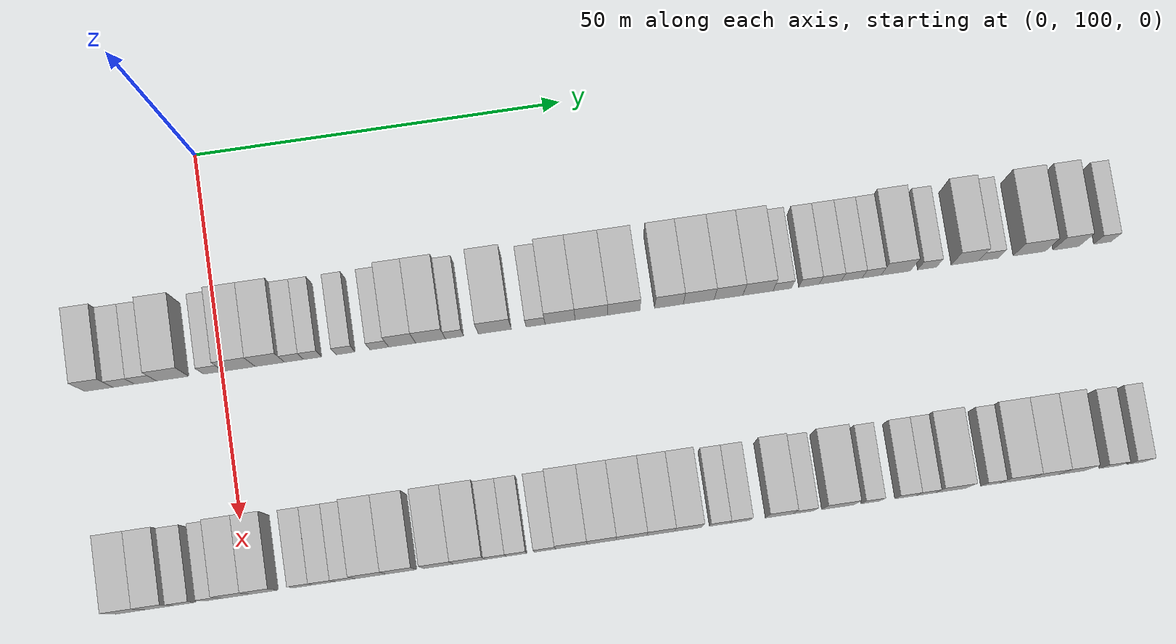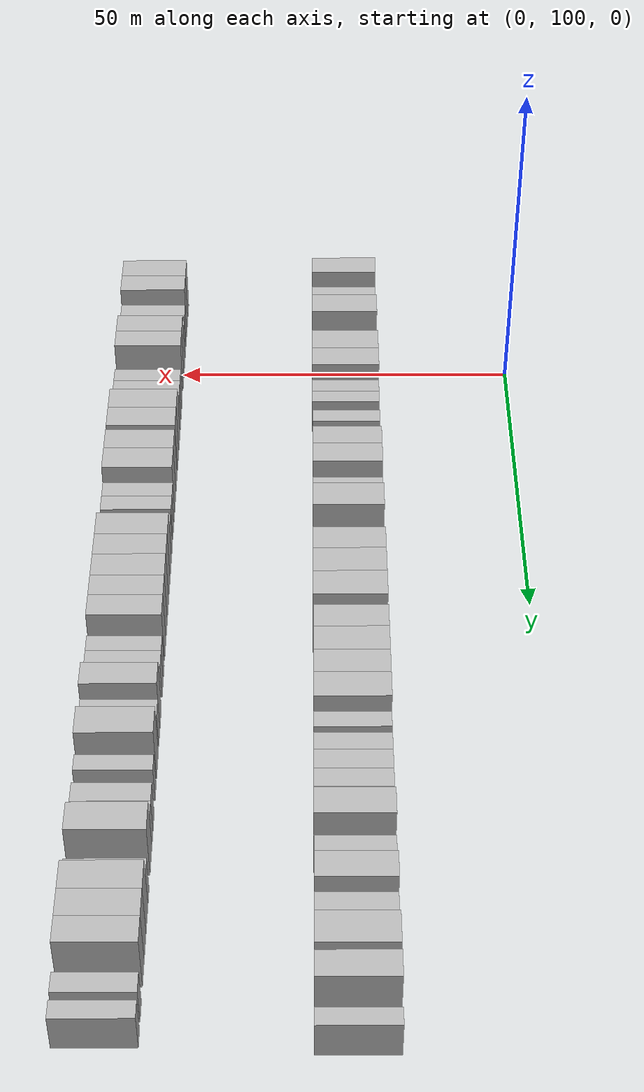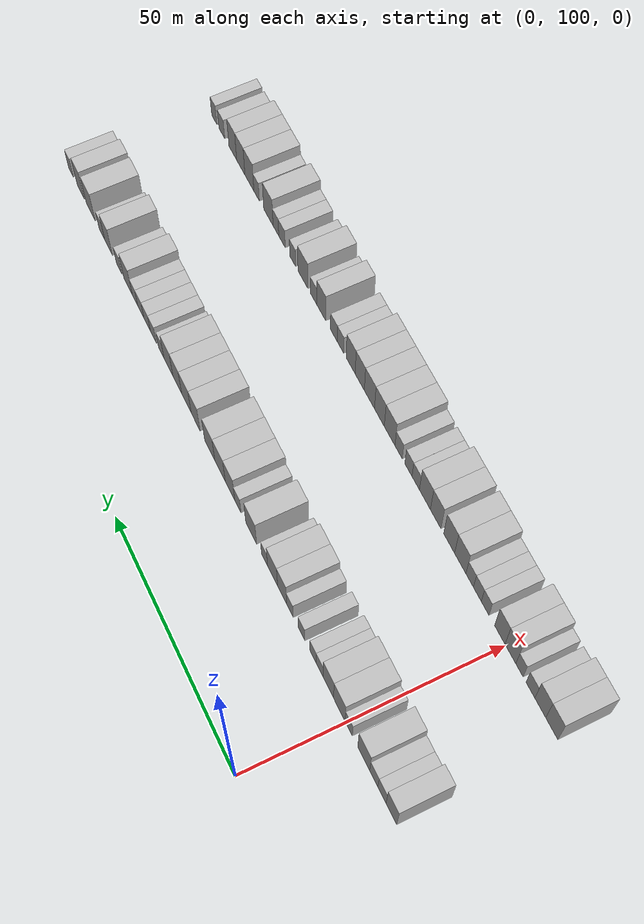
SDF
<sdf version="1.6">
 <world name="default">
  <model name="building_72">
   <static>1</static>
   <pose>25.0000 83.4404 0 0.000000 0.000000 0.000000</pose>
   <link name="link">
    <pose>0 0 4.50 0 0 0</pose>
    <collision name="collision"><geometry><box><size>10.0000 3.7390 9.0000</size></box></geometry></collision>
    <visual name="visual">
     <cast_shadows>0</cast_shadows>
     <geometry><box><size>10.0000 3.7390 9.0000</size></box></geometry>
     <material>
      <script>
       <uri>model://HANNAS_wall/materials/scripts</uri>
       <uri>model://HANNAS_wall/materials/textures</uri>
       <name>vrc/HANNAS_wall</name>
      </script>
     </material>
    </visual>
   </link>
  </model>
  <model name="building_73">
   <static>1</static>
   <pose>25.0000 86.7811 0 0.000000 0.000000 0.000000</pose>
   <link name="link">
    <pose>0 0 3.00 0 0 0</pose>
    <collision name="collision"><geometry><box><size>10.0000 2.9424 6.0000</size></box></geometry></collision>
    <visual name="visual">
     <cast_shadows>0</cast_shadows>
     <geometry><box><size>10.0000 2.9424 6.0000</size></box></geometry>
     <material>
      <script>
       <uri>model://HANNAS_wall/materials/scripts</uri>
       <uri>model://HANNAS_wall/materials/textures</uri>
       <name>vrc/HANNAS_wall</name>
      </script>
     </material>
    </visual>
   </link>
  </model>
  <model name="building_74">
   <static>1</static>
   <pose>25.0000 89.7200 0 0.000000 0.000000 0.000000</pose>
   <link name="link">
    <pose>0 0 3.00 0 0 0</pose>
    <collision name="collision"><geometry><box><size>10.0000 2.9354 6.0000</size></box></geometry></collision>
    <visual name="visual">
     <cast_shadows>0</cast_shadows>
     <geometry><box><size>10.0000 2.9354 6.0000</size></box></geometry>
     <material>
      <script>
       <uri>model://HANNAS_wall/materials/scripts</uri>
       <uri>model://HANNAS_wall/materials/textures</uri>
       <name>vrc/HANNAS_wall</name>
      </script>
     </material>
    </visual>
   </link>
  </model>
  <model name="building_75">
   <static>1</static>
   <pose>25.0000 93.3581 0 0.000000 0.000000 0.000000</pose>
   <link name="link">
    <pose>0 0 4.50 0 0 0</pose>
    <collision name="collision"><geometry><box><size>10.0000 4.3407 9.0000</size></box></geometry></collision>
    <visual name="visual">
     <cast_shadows>0</cast_shadows>
     <geometry><box><size>10.0000 4.3407 9.0000</size></box></geometry>
     <material>
      <script>
       <uri>model://HANNAS_wall/materials/scripts</uri>
       <uri>model://HANNAS_wall/materials/textures</uri>
       <name>vrc/HANNAS_wall</name>
      </script>
     </material>
    </visual>
   </link>
  </model>
  <model name="building_76">
   <static>1</static>
   <pose>25.0000 98.8692 0 0.000000 0.000000 0.000000</pose>
   <link name="link">
    <pose>0 0 3.00 0 0 0</pose>
    <collision name="collision"><geometry><box><size>10.0000 2.6815 6.0000</size></box></geometry></collision>
    <visual name="visual">
     <cast_shadows>0</cast_shadows>
     <geometry><box><size>10.0000 2.6815 6.0000</size></box></geometry>
     <material>
      <script>
       <uri>model://HANNAS_wall/materials/scripts</uri>
       <uri>model://HANNAS_wall/materials/textures</uri>
       <name>vrc/HANNAS_wall</name>
      </script>
     </material>
    </visual>
   </link>
  </model>
  <model name="building_77">
   <static>1</static>
   <pose>25.0000 102.3580 0 0.000000 0.000000 0.000000</pose>
   <link name="link">
    <pose>0 0 4.50 0 0 0</pose>
    <collision name="collision"><geometry><box><size>10.0000 4.2961 9.0000</size></box></geometry></collision>
    <visual name="visual">
     <cast_shadows>0</cast_shadows>
     <geometry><box><size>10.0000 4.2961 9.0000</size></box></geometry>
     <material>
      <script>
       <uri>model://HANNAS_wall/materials/scripts</uri>
       <uri>model://HANNAS_wall/materials/textures</uri>
       <name>vrc/HANNAS_wall</name>
      </script>
     </material>
    </visual>
   </link>
  </model>
  <model name="building_78">
   <static>1</static>
   <pose>25.0000 106.4909 0 0.000000 0.000000 0.000000</pose>
   <link name="link">
    <pose>0 0 4.50 0 0 0</pose>
    <collision name="collision"><geometry><box><size>10.0000 3.9697 9.0000</size></box></geometry></collision>
    <visual name="visual">
     <cast_shadows>0</cast_shadows>
     <geometry><box><size>10.0000 3.9697 9.0000</size></box></geometry>
     <material>
      <script>
       <uri>model://HANNAS_wall/materials/scripts</uri>
       <uri>model://HANNAS_wall/materials/textures</uri>
       <name>vrc/HANNAS_wall</name>
      </script>
     </material>
    </visual>
   </link>
  </model>
  <model name="building_79">
   <static>1</static>
   <pose>25.0000 109.7635 0 0.000000 0.000000 0.000000</pose>
   <link name="link">
    <pose>0 0 3.00 0 0 0</pose>
    <collision name="collision"><geometry><box><size>10.0000 2.5756 6.0000</size></box></geometry></collision>
    <visual name="visual">
     <cast_shadows>0</cast_shadows>
     <geometry><box><size>10.0000 2.5756 6.0000</size></box></geometry>
     <material>
      <script>
       <uri>model://HANNAS_wall/materials/scripts</uri>
       <uri>model://HANNAS_wall/materials/textures</uri>
       <name>vrc/HANNAS_wall</name>
      </script>
     </material>
    </visual>
   </link>
  </model>
  <model name="building_80">
   <static>1</static>
   <pose>25.0000 112.2584 0 0.000000 0.000000 0.000000</pose>
   <link name="link">
    <pose>0 0 3.00 0 0 0</pose>
    <collision name="collision"><geometry><box><size>10.0000 2.4141 6.0000</size></box></geometry></collision>
    <visual name="visual">
     <cast_shadows>0</cast_shadows>
     <geometry><box><size>10.0000 2.4141 6.0000</size></box></geometry>
     <material>
      <script>
       <uri>model://HANNAS_wall/materials/scripts</uri>
       <uri>model://HANNAS_wall/materials/textures</uri>
       <name>vrc/HANNAS_wall</name>
      </script>
     </material>
    </visual>
   </link>
  </model>
  <model name="building_81">
   <static>1</static>
   <pose>25.0000 116.7394 0 0.000000 0.000000 0.000000</pose>
   <link name="link">
    <pose>0 0 3.00 0 0 0</pose>
    <collision name="collision"><geometry><box><size>10.0000 2.5479 6.0000</size></box></geometry></collision>
    <visual name="visual">
     <cast_shadows>0</cast_shadows>
     <geometry><box><size>10.0000 2.5479 6.0000</size></box></geometry>
     <material>
      <script>
       <uri>model://HANNAS_wall/materials/scripts</uri>
       <uri>model://HANNAS_wall/materials/textures</uri>
       <name>vrc/HANNAS_wall</name>
      </script>
     </material>
    </visual>
   </link>
  </model>
  <model name="building_82">
   <static>1</static>
   <pose>25.0000 121.2804 0 0.000000 0.000000 0.000000</pose>
   <link name="link">
    <pose>0 0 3.00 0 0 0</pose>
    <collision name="collision"><geometry><box><size>10.0000 2.5340 6.0000</size></box></geometry></collision>
    <visual name="visual">
     <cast_shadows>0</cast_shadows>
     <geometry><box><size>10.0000 2.5340 6.0000</size></box></geometry>
     <material>
      <script>
       <uri>model://HANNAS_wall/materials/scripts</uri>
       <uri>model://HANNAS_wall/materials/textures</uri>
       <name>vrc/HANNAS_wall</name>
      </script>
     </material>
    </visual>
   </link>
  </model>
  <model name="building_83">
   <static>1</static>
   <pose>25.0000 124.3702 0 0.000000 0.000000 0.000000</pose>
   <link name="link">
    <pose>0 0 4.50 0 0 0</pose>
    <collision name="collision"><geometry><box><size>10.0000 3.6457 9.0000</size></box></geometry></collision>
    <visual name="visual">
     <cast_shadows>0</cast_shadows>
     <geometry><box><size>10.0000 3.6457 9.0000</size></box></geometry>
     <material>
      <script>
       <uri>model://HANNAS_wall/materials/scripts</uri>
       <uri>model://HANNAS_wall/materials/textures</uri>
       <name>vrc/HANNAS_wall</name>
      </script>
     </material>
    </visual>
   </link>
  </model>
  <model name="building_84">
   <static>1</static>
   <pose>25.0000 128.2041 0 0.000000 0.000000 0.000000</pose>
   <link name="link">
    <pose>0 0 4.50 0 0 0</pose>
    <collision name="collision"><geometry><box><size>10.0000 4.0221 9.0000</size></box></geometry></collision>
    <visual name="visual">
     <cast_shadows>0</cast_shadows>
     <geometry><box><size>10.0000 4.0221 9.0000</size></box></geometry>
     <material>
      <script>
       <uri>model://HANNAS_wall/materials/scripts</uri>
       <uri>model://HANNAS_wall/materials/textures</uri>
       <name>vrc/HANNAS_wall</name>
      </script>
     </material>
    </visual>
   </link>
  </model>
  <model name="building_85">
   <static>1</static>
   <pose>25.0000 131.4489 0 0.000000 0.000000 0.000000</pose>
   <link name="link">
    <pose>0 0 3.00 0 0 0</pose>
    <collision name="collision"><geometry><box><size>10.0000 2.4674 6.0000</size></box></geometry></collision>
    <visual name="visual">
     <cast_shadows>0</cast_shadows>
     <geometry><box><size>10.0000 2.4674 6.0000</size></box></geometry>
     <material>
      <script>
       <uri>model://HANNAS_wall/materials/scripts</uri>
       <uri>model://HANNAS_wall/materials/textures</uri>
       <name>vrc/HANNAS_wall</name>
      </script>
     </material>
    </visual>
   </link>
  </model>
  <model name="building_86">
   <static>1</static>
   <pose>25.0000 136.9197 0 0.000000 0.000000 0.000000</pose>
   <link name="link">
    <pose>0 0 4.50 0 0 0</pose>
    <collision name="collision"><geometry><box><size>10.0000 4.4741 9.0000</size></box></geometry></collision>
    <visual name="visual">
     <cast_shadows>0</cast_shadows>
     <geometry><box><size>10.0000 4.4741 9.0000</size></box></geometry>
     <material>
      <script>
       <uri>model://HANNAS_wall/materials/scripts</uri>
       <uri>model://HANNAS_wall/materials/textures</uri>
       <name>vrc/HANNAS_wall</name>
      </script>
     </material>
    </visual>
   </link>
  </model>
  <model name="building_87">
   <static>1</static>
   <pose>25.0000 142.4414 0 0.000000 0.000000 0.000000</pose>
   <link name="link">
    <pose>0 0 3.00 0 0 0</pose>
    <collision name="collision"><geometry><box><size>10.0000 2.5693 6.0000</size></box></geometry></collision>
    <visual name="visual">
     <cast_shadows>0</cast_shadows>
     <geometry><box><size>10.0000 2.5693 6.0000</size></box></geometry>
     <material>
      <script>
       <uri>model://HANNAS_wall/materials/scripts</uri>
       <uri>model://HANNAS_wall/materials/textures</uri>
       <name>vrc/HANNAS_wall</name>
      </script>
     </material>
    </visual>
   </link>
  </model>
  <model name="building_88">
   <static>1</static>
   <pose>25.0000 145.7565 0 0.000000 0.000000 0.000000</pose>
   <link name="link">
    <pose>0 0 4.50 0 0 0</pose>
    <collision name="collision"><geometry><box><size>10.0000 4.0609 9.0000</size></box></geometry></collision>
    <visual name="visual">
     <cast_shadows>0</cast_shadows>
     <geometry><box><size>10.0000 4.0609 9.0000</size></box></geometry>
     <material>
      <script>
       <uri>model://HANNAS_wall/materials/scripts</uri>
       <uri>model://HANNAS_wall/materials/textures</uri>
       <name>vrc/HANNAS_wall</name>
      </script>
     </material>
    </visual>
   </link>
  </model>
  <model name="building_89">
   <static>1</static>
   <pose>25.0000 150.0098 0 0.000000 0.000000 0.000000</pose>
   <link name="link">
    <pose>0 0 4.50 0 0 0</pose>
    <collision name="collision"><geometry><box><size>10.0000 4.4457 9.0000</size></box></geometry></collision>
    <visual name="visual">
     <cast_shadows>0</cast_shadows>
     <geometry><box><size>10.0000 4.4457 9.0000</size></box></geometry>
     <material>
      <script>
       <uri>model://HANNAS_wall/materials/scripts</uri>
       <uri>model://HANNAS_wall/materials/textures</uri>
       <name>vrc/HANNAS_wall</name>
      </script>
     </material>
    </visual>
   </link>
  </model>
  <model name="building_90">
   <static>1</static>
   <pose>25.0000 154.4193 0 0.000000 0.000000 0.000000</pose>
   <link name="link">
    <pose>0 0 4.50 0 0 0</pose>
    <collision name="collision"><geometry><box><size>10.0000 4.3732 9.0000</size></box></geometry></collision>
    <visual name="visual">
     <cast_shadows>0</cast_shadows>
     <geometry><box><size>10.0000 4.3732 9.0000</size></box></geometry>
     <material>
      <script>
       <uri>model://HANNAS_wall/materials/scripts</uri>
       <uri>model://HANNAS_wall/materials/textures</uri>
       <name>vrc/HANNAS_wall</name>
      </script>
     </material>
    </visual>
   </link>
  </model>
  <model name="building_91">
   <static>1</static>
   <pose>25.0000 160.5496 0 0.000000 0.000000 0.000000</pose>
   <link name="link">
    <pose>0 0 4.50 0 0 0</pose>
    <collision name="collision"><geometry><box><size>10.0000 3.8875 9.0000</size></box></geometry></collision>
    <visual name="visual">
     <cast_shadows>0</cast_shadows>
     <geometry><box><size>10.0000 3.8875 9.0000</size></box></geometry>
     <material>
      <script>
       <uri>model://HANNAS_wall/materials/scripts</uri>
       <uri>model://HANNAS_wall/materials/textures</uri>
       <name>vrc/HANNAS_wall</name>
      </script>
     </material>
    </visual>
   </link>
  </model>
  <model name="building_92">
   <static>1</static>
   <pose>25.0000 164.5964 0 0.000000 0.000000 0.000000</pose>
   <link name="link">
    <pose>0 0 4.50 0 0 0</pose>
    <collision name="collision"><geometry><box><size>10.0000 4.2061 9.0000</size></box></geometry></collision>
    <visual name="visual">
     <cast_shadows>0</cast_shadows>
     <geometry><box><size>10.0000 4.2061 9.0000</size></box></geometry>
     <material>
      <script>
       <uri>model://HANNAS_wall/materials/scripts</uri>
       <uri>model://HANNAS_wall/materials/textures</uri>
       <name>vrc/HANNAS_wall</name>
      </script>
     </material>
    </visual>
   </link>
  </model>
  <model name="building_93">
   <static>1</static>
   <pose>25.0000 168.6504 0 0.000000 0.000000 0.000000</pose>
   <link name="link">
    <pose>0 0 4.50 0 0 0</pose>
    <collision name="collision"><geometry><box><size>10.0000 3.9020 9.0000</size></box></geometry></collision>
    <visual name="visual">
     <cast_shadows>0</cast_shadows>
     <geometry><box><size>10.0000 3.9020 9.0000</size></box></geometry>
     <material>
      <script>
       <uri>model://HANNAS_wall/materials/scripts</uri>
       <uri>model://HANNAS_wall/materials/textures</uri>
       <name>vrc/HANNAS_wall</name>
      </script>
     </material>
    </visual>
   </link>
  </model>
  <model name="building_94">
   <static>1</static>
   <pose>25.0000 172.6563 0 0.000000 0.000000 0.000000</pose>
   <link name="link">
    <pose>0 0 4.50 0 0 0</pose>
    <collision name="collision"><geometry><box><size>10.0000 4.1097 9.0000</size></box></geometry></collision>
    <visual name="visual">
     <cast_shadows>0</cast_shadows>
     <geometry><box><size>10.0000 4.1097 9.0000</size></box></geometry>
     <material>
      <script>
       <uri>model://HANNAS_wall/materials/scripts</uri>
       <uri>model://HANNAS_wall/materials/textures</uri>
       <name>vrc/HANNAS_wall</name>
      </script>
     </material>
    </visual>
   </link>
  </model>
  <model name="building_95">
   <static>1</static>
   <pose>25.0000 175.9734 0 0.000000 0.000000 0.000000</pose>
   <link name="link">
    <pose>0 0 3.00 0 0 0</pose>
    <collision name="collision"><geometry><box><size>10.0000 2.5245 6.0000</size></box></geometry></collision>
    <visual name="visual">
     <cast_shadows>0</cast_shadows>
     <geometry><box><size>10.0000 2.5245 6.0000</size></box></geometry>
     <material>
      <script>
       <uri>model://HANNAS_wall/materials/scripts</uri>
       <uri>model://HANNAS_wall/materials/textures</uri>
       <name>vrc/HANNAS_wall</name>
      </script>
     </material>
    </visual>
   </link>
  </model>
  <model name="building_96">
   <static>1</static>
   <pose>25.0000 179.6205 0 0.000000 0.000000 0.000000</pose>
   <link name="link">
    <pose>0 0 3.00 0 0 0</pose>
    <collision name="collision"><geometry><box><size>10.0000 2.7698 6.0000</size></box></geometry></collision>
    <visual name="visual">
     <cast_shadows>0</cast_shadows>
     <geometry><box><size>10.0000 2.7698 6.0000</size></box></geometry>
     <material>
      <script>
       <uri>model://HANNAS_wall/materials/scripts</uri>
       <uri>model://HANNAS_wall/materials/textures</uri>
       <name>vrc/HANNAS_wall</name>
      </script>
     </material>
    </visual>
   </link>
  </model>
  <model name="building_97">
   <static>1</static>
   <pose>25.0000 182.5048 0 0.000000 0.000000 0.000000</pose>
   <link name="link">
    <pose>0 0 3.00 0 0 0</pose>
    <collision name="collision"><geometry><box><size>10.0000 2.9987 6.0000</size></box></geometry></collision>
    <visual name="visual">
     <cast_shadows>0</cast_shadows>
     <geometry><box><size>10.0000 2.9987 6.0000</size></box></geometry>
     <material>
      <script>
       <uri>model://HANNAS_wall/materials/scripts</uri>
       <uri>model://HANNAS_wall/materials/textures</uri>
       <name>vrc/HANNAS_wall</name>
      </script>
     </material>
    </visual>
   </link>
  </model>
  <model name="building_98">
   <static>1</static>
   <pose>25.0000 185.4522 0 0.000000 0.000000 0.000000</pose>
   <link name="link">
    <pose>0 0 3.00 0 0 0</pose>
    <collision name="collision"><geometry><box><size>10.0000 2.8961 6.0000</size></box></geometry></collision>
    <visual name="visual">
     <cast_shadows>0</cast_shadows>
     <geometry><box><size>10.0000 2.8961 6.0000</size></box></geometry>
     <material>
      <script>
       <uri>model://HANNAS_wall/materials/scripts</uri>
       <uri>model://HANNAS_wall/materials/textures</uri>
       <name>vrc/HANNAS_wall</name>
      </script>
     </material>
    </visual>
   </link>
  </model>
  <model name="building_99">
   <static>1</static>
   <pose>25.0000 188.1788 0 0.000000 0.000000 0.000000</pose>
   <link name="link">
    <pose>0 0 3.00 0 0 0</pose>
    <collision name="collision"><geometry><box><size>10.0000 2.5572 6.0000</size></box></geometry></collision>
    <visual name="visual">
     <cast_shadows>0</cast_shadows>
     <geometry><box><size>10.0000 2.5572 6.0000</size></box></geometry>
     <material>
      <script>
       <uri>model://HANNAS_wall/materials/scripts</uri>
       <uri>model://HANNAS_wall/materials/textures</uri>
       <name>vrc/HANNAS_wall</name>
      </script>
     </material>
    </visual>
   </link>
  </model>
  <model name="building_100">
   <static>1</static>
   <pose>25.0000 191.4676 0 0.000000 0.000000 0.000000</pose>
   <link name="link">
    <pose>0 0 4.50 0 0 0</pose>
    <collision name="collision"><geometry><box><size>10.0000 4.0204 9.0000</size></box></geometry></collision>
    <visual name="visual">
     <cast_shadows>0</cast_shadows>
     <geometry><box><size>10.0000 4.0204 9.0000</size></box></geometry>
     <material>
      <script>
       <uri>model://HANNAS_wall/materials/scripts</uri>
       <uri>model://HANNAS_wall/materials/textures</uri>
       <name>vrc/HANNAS_wall</name>
      </script>
     </material>
    </visual>
   </link>
  </model>
  <model name="building_101">
   <static>1</static>
   <pose>25.0000 195.7703 0 0.000000 0.000000 0.000000</pose>
   <link name="link">
    <pose>0 0 3.00 0 0 0</pose>
    <collision name="collision"><geometry><box><size>10.0000 2.5850 6.0000</size></box></geometry></collision>
    <visual name="visual">
     <cast_shadows>0</cast_shadows>
     <geometry><box><size>10.0000 2.5850 6.0000</size></box></geometry>
     <material>
      <script>
       <uri>model://HANNAS_wall/materials/scripts</uri>
       <uri>model://HANNAS_wall/materials/textures</uri>
       <name>vrc/HANNAS_wall</name>
      </script>
     </material>
    </visual>
   </link>
  </model>
  <model name="building_102">
   <static>1</static>
   <pose>25.0000 200.9438 0 0.000000 0.000000 0.000000</pose>
   <link name="link">
    <pose>0 0 4.50 0 0 0</pose>
    <collision name="collision"><geometry><box><size>10.0000 3.7618 9.0000</size></box></geometry></collision>
    <visual name="visual">
     <cast_shadows>0</cast_shadows>
     <geometry><box><size>10.0000 3.7618 9.0000</size></box></geometry>
     <material>
      <script>
       <uri>model://HANNAS_wall/materials/scripts</uri>
       <uri>model://HANNAS_wall/materials/textures</uri>
       <name>vrc/HANNAS_wall</name>
      </script>
     </material>
    </visual>
   </link>
  </model>
  <model name="building_103">
   <static>1</static>
   <pose>25.0000 204.1903 0 0.000000 0.000000 0.000000</pose>
   <link name="link">
    <pose>0 0 3.00 0 0 0</pose>
    <collision name="collision"><geometry><box><size>10.0000 2.7313 6.0000</size></box></geometry></collision>
    <visual name="visual">
     <cast_shadows>0</cast_shadows>
     <geometry><box><size>10.0000 2.7313 6.0000</size></box></geometry>
     <material>
      <script>
       <uri>model://HANNAS_wall/materials/scripts</uri>
       <uri>model://HANNAS_wall/materials/textures</uri>
       <name>vrc/HANNAS_wall</name>
      </script>
     </material>
    </visual>
   </link>
  </model>
  <model name="building_104">
   <static>1</static>
   <pose>25.0000 209.7752 0 0.000000 0.000000 0.000000</pose>
   <link name="link">
    <pose>0 0 4.50 0 0 0</pose>
    <collision name="collision"><geometry><box><size>10.0000 4.4387 9.0000</size></box></geometry></collision>
    <visual name="visual">
     <cast_shadows>0</cast_shadows>
     <geometry><box><size>10.0000 4.4387 9.0000</size></box></geometry>
     <material>
      <script>
       <uri>model://HANNAS_wall/materials/scripts</uri>
       <uri>model://HANNAS_wall/materials/textures</uri>
       <name>vrc/HANNAS_wall</name>
      </script>
     </material>
    </visual>
   </link>
  </model>
  <model name="building_105">
   <static>1</static>
   <pose>25.0000 214.7946 0 0.000000 0.000000 0.000000</pose>
   <link name="link">
    <pose>0 0 4.50 0 0 0</pose>
    <collision name="collision"><geometry><box><size>10.0000 3.6001 9.0000</size></box></geometry></collision>
    <visual name="visual">
     <cast_shadows>0</cast_shadows>
     <geometry><box><size>10.0000 3.6001 9.0000</size></box></geometry>
     <material>
      <script>
       <uri>model://HANNAS_wall/materials/scripts</uri>
       <uri>model://HANNAS_wall/materials/textures</uri>
       <name>vrc/HANNAS_wall</name>
      </script>
     </material>
    </visual>
   </link>
  </model>
  <model name="building_106">
   <static>1</static>
   <pose>25.0000 219.7983 0 0.000000 0.000000 0.000000</pose>
   <link name="link">
    <pose>0 0 3.00 0 0 0</pose>
    <collision name="collision"><geometry><box><size>10.0000 2.4073 6.0000</size></box></geometry></collision>
    <visual name="visual">
     <cast_shadows>0</cast_shadows>
     <geometry><box><size>10.0000 2.4073 6.0000</size></box></geometry>
     <material>
      <script>
       <uri>model://HANNAS_wall/materials/scripts</uri>
       <uri>model://HANNAS_wall/materials/textures</uri>
       <name>vrc/HANNAS_wall</name>
      </script>
     </material>
    </visual>
   </link>
  </model>
  <model name="building_178">
   <static>1</static>
   <pose>55.0000 84.2685 0 0.000000 0.000000 0.000000</pose>
   <link name="link">
    <pose>0 0 4.50 0 0 0</pose>
    <collision name="collision"><geometry><box><size>10.0000 4.0362 9.0000</size></box></geometry></collision>
    <visual name="visual">
     <cast_shadows>0</cast_shadows>
     <geometry><box><size>10.0000 4.0362 9.0000</size></box></geometry>
     <material>
      <script>
       <uri>model://HANNAS_wall/materials/scripts</uri>
       <uri>model://HANNAS_wall/materials/textures</uri>
       <name>vrc/HANNAS_wall</name>
      </script>
     </material>
    </visual>
   </link>
  </model>
  <model name="building_179">
   <static>1</static>
   <pose>55.0000 88.1258 0 0.000000 0.000000 0.000000</pose>
   <link name="link">
    <pose>0 0 4.50 0 0 0</pose>
    <collision name="collision"><geometry><box><size>10.0000 3.6783 9.0000</size></box></geometry></collision>
    <visual name="visual">
     <cast_shadows>0</cast_shadows>
     <geometry><box><size>10.0000 3.6783 9.0000</size></box></geometry>
     <material>
      <script>
       <uri>model://HANNAS_wall/materials/scripts</uri>
       <uri>model://HANNAS_wall/materials/textures</uri>
       <name>vrc/HANNAS_wall</name>
      </script>
     </material>
    </visual>
   </link>
  </model>
  <model name="building_180">
   <static>1</static>
   <pose>55.0000 91.4565 0 0.000000 0.000000 0.000000</pose>
   <link name="link">
    <pose>0 0 3.00 0 0 0</pose>
    <collision name="collision"><geometry><box><size>10.0000 2.9832 6.0000</size></box></geometry></collision>
    <visual name="visual">
     <cast_shadows>0</cast_shadows>
     <geometry><box><size>10.0000 2.9832 6.0000</size></box></geometry>
     <material>
      <script>
       <uri>model://HANNAS_wall/materials/scripts</uri>
       <uri>model://HANNAS_wall/materials/textures</uri>
       <name>vrc/HANNAS_wall</name>
      </script>
     </material>
    </visual>
   </link>
  </model>
  <model name="building_181">
   <static>1</static>
   <pose>55.0000 95.1975 0 0.000000 0.000000 0.000000</pose>
   <link name="link">
    <pose>0 0 3.00 0 0 0</pose>
    <collision name="collision"><geometry><box><size>10.0000 2.4988 6.0000</size></box></geometry></collision>
    <visual name="visual">
     <cast_shadows>0</cast_shadows>
     <geometry><box><size>10.0000 2.4988 6.0000</size></box></geometry>
     <material>
      <script>
       <uri>model://HANNAS_wall/materials/scripts</uri>
       <uri>model://HANNAS_wall/materials/textures</uri>
       <name>vrc/HANNAS_wall</name>
      </script>
     </material>
    </visual>
   </link>
  </model>
  <model name="building_182">
   <static>1</static>
   <pose>55.0000 98.3253 0 0.000000 0.000000 0.000000</pose>
   <link name="link">
    <pose>0 0 4.50 0 0 0</pose>
    <collision name="collision"><geometry><box><size>10.0000 3.7568 9.0000</size></box></geometry></collision>
    <visual name="visual">
     <cast_shadows>0</cast_shadows>
     <geometry><box><size>10.0000 3.7568 9.0000</size></box></geometry>
     <material>
      <script>
       <uri>model://HANNAS_wall/materials/scripts</uri>
       <uri>model://HANNAS_wall/materials/textures</uri>
       <name>vrc/HANNAS_wall</name>
      </script>
     </material>
    </visual>
   </link>
  </model>
  <model name="building_183">
   <static>1</static>
   <pose>55.0000 102.0275 0 0.000000 0.000000 0.000000</pose>
   <link name="link">
    <pose>0 0 4.50 0 0 0</pose>
    <collision name="collision"><geometry><box><size>10.0000 3.6477 9.0000</size></box></geometry></collision>
    <visual name="visual">
     <cast_shadows>0</cast_shadows>
     <geometry><box><size>10.0000 3.6477 9.0000</size></box></geometry>
     <material>
      <script>
       <uri>model://HANNAS_wall/materials/scripts</uri>
       <uri>model://HANNAS_wall/materials/textures</uri>
       <name>vrc/HANNAS_wall</name>
      </script>
     </material>
    </visual>
   </link>
  </model>
  <model name="building_184">
   <static>1</static>
   <pose>55.0000 107.2185 0 0.000000 0.000000 0.000000</pose>
   <link name="link">
    <pose>0 0 3.00 0 0 0</pose>
    <collision name="collision"><geometry><box><size>10.0000 2.7343 6.0000</size></box></geometry></collision>
    <visual name="visual">
     <cast_shadows>0</cast_shadows>
     <geometry><box><size>10.0000 2.7343 6.0000</size></box></geometry>
     <material>
      <script>
       <uri>model://HANNAS_wall/materials/scripts</uri>
       <uri>model://HANNAS_wall/materials/textures</uri>
       <name>vrc/HANNAS_wall</name>
      </script>
     </material>
    </visual>
   </link>
  </model>
  <model name="building_185">
   <static>1</static>
   <pose>55.0000 110.0021 0 0.000000 0.000000 0.000000</pose>
   <link name="link">
    <pose>0 0 3.00 0 0 0</pose>
    <collision name="collision"><geometry><box><size>10.0000 2.8327 6.0000</size></box></geometry></collision>
    <visual name="visual">
     <cast_shadows>0</cast_shadows>
     <geometry><box><size>10.0000 2.8327 6.0000</size></box></geometry>
     <material>
      <script>
       <uri>model://HANNAS_wall/materials/scripts</uri>
       <uri>model://HANNAS_wall/materials/textures</uri>
       <name>vrc/HANNAS_wall</name>
      </script>
     </material>
    </visual>
   </link>
  </model>
  <model name="building_186">
   <static>1</static>
   <pose>55.0000 112.7693 0 0.000000 0.000000 0.000000</pose>
   <link name="link">
    <pose>0 0 3.00 0 0 0</pose>
    <collision name="collision"><geometry><box><size>10.0000 2.7018 6.0000</size></box></geometry></collision>
    <visual name="visual">
     <cast_shadows>0</cast_shadows>
     <geometry><box><size>10.0000 2.7018 6.0000</size></box></geometry>
     <material>
      <script>
       <uri>model://HANNAS_wall/materials/scripts</uri>
       <uri>model://HANNAS_wall/materials/textures</uri>
       <name>vrc/HANNAS_wall</name>
      </script>
     </material>
    </visual>
   </link>
  </model>
  <model name="building_187">
   <static>1</static>
   <pose>55.0000 116.1908 0 0.000000 0.000000 0.000000</pose>
   <link name="link">
    <pose>0 0 4.50 0 0 0</pose>
    <collision name="collision"><geometry><box><size>10.0000 4.1412 9.0000</size></box></geometry></collision>
    <visual name="visual">
     <cast_shadows>0</cast_shadows>
     <geometry><box><size>10.0000 4.1412 9.0000</size></box></geometry>
     <material>
      <script>
       <uri>model://HANNAS_wall/materials/scripts</uri>
       <uri>model://HANNAS_wall/materials/textures</uri>
       <name>vrc/HANNAS_wall</name>
      </script>
     </material>
    </visual>
   </link>
  </model>
  <model name="building_188">
   <static>1</static>
   <pose>55.0000 120.2736 0 0.000000 0.000000 0.000000</pose>
   <link name="link">
    <pose>0 0 4.50 0 0 0</pose>
    <collision name="collision"><geometry><box><size>10.0000 4.0244 9.0000</size></box></geometry></collision>
    <visual name="visual">
     <cast_shadows>0</cast_shadows>
     <geometry><box><size>10.0000 4.0244 9.0000</size></box></geometry>
     <material>
      <script>
       <uri>model://HANNAS_wall/materials/scripts</uri>
       <uri>model://HANNAS_wall/materials/textures</uri>
       <name>vrc/HANNAS_wall</name>
      </script>
     </material>
    </visual>
   </link>
  </model>
  <model name="building_189">
   <static>1</static>
   <pose>55.0000 125.2668 0 0.000000 0.000000 0.000000</pose>
   <link name="link">
    <pose>0 0 4.50 0 0 0</pose>
    <collision name="collision"><geometry><box><size>10.0000 3.9619 9.0000</size></box></geometry></collision>
    <visual name="visual">
     <cast_shadows>0</cast_shadows>
     <geometry><box><size>10.0000 3.9619 9.0000</size></box></geometry>
     <material>
      <script>
       <uri>model://HANNAS_wall/materials/scripts</uri>
       <uri>model://HANNAS_wall/materials/textures</uri>
       <name>vrc/HANNAS_wall</name>
      </script>
     </material>
    </visual>
   </link>
  </model>
  <model name="building_190">
   <static>1</static>
   <pose>55.0000 129.3348 0 0.000000 0.000000 0.000000</pose>
   <link name="link">
    <pose>0 0 4.50 0 0 0</pose>
    <collision name="collision"><geometry><box><size>10.0000 4.1740 9.0000</size></box></geometry></collision>
    <visual name="visual">
     <cast_shadows>0</cast_shadows>
     <geometry><box><size>10.0000 4.1740 9.0000</size></box></geometry>
     <material>
      <script>
       <uri>model://HANNAS_wall/materials/scripts</uri>
       <uri>model://HANNAS_wall/materials/textures</uri>
       <name>vrc/HANNAS_wall</name>
      </script>
     </material>
    </visual>
   </link>
  </model>
  <model name="building_191">
   <static>1</static>
   <pose>55.0000 132.8316 0 0.000000 0.000000 0.000000</pose>
   <link name="link">
    <pose>0 0 3.00 0 0 0</pose>
    <collision name="collision"><geometry><box><size>10.0000 2.8197 6.0000</size></box></geometry></collision>
    <visual name="visual">
     <cast_shadows>0</cast_shadows>
     <geometry><box><size>10.0000 2.8197 6.0000</size></box></geometry>
     <material>
      <script>
       <uri>model://HANNAS_wall/materials/scripts</uri>
       <uri>model://HANNAS_wall/materials/textures</uri>
       <name>vrc/HANNAS_wall</name>
      </script>
     </material>
    </visual>
   </link>
  </model>
  <model name="building_192">
   <static>1</static>
   <pose>55.0000 135.6210 0 0.000000 0.000000 0.000000</pose>
   <link name="link">
    <pose>0 0 3.00 0 0 0</pose>
    <collision name="collision"><geometry><box><size>10.0000 2.7589 6.0000</size></box></geometry></collision>
    <visual name="visual">
     <cast_shadows>0</cast_shadows>
     <geometry><box><size>10.0000 2.7589 6.0000</size></box></geometry>
     <material>
      <script>
       <uri>model://HANNAS_wall/materials/scripts</uri>
       <uri>model://HANNAS_wall/materials/textures</uri>
       <name>vrc/HANNAS_wall</name>
      </script>
     </material>
    </visual>
   </link>
  </model>
  <model name="building_193">
   <static>1</static>
   <pose>55.0000 139.4268 0 0.000000 0.000000 0.000000</pose>
   <link name="link">
    <pose>0 0 3.00 0 0 0</pose>
    <collision name="collision"><geometry><box><size>10.0000 2.8528 6.0000</size></box></geometry></collision>
    <visual name="visual">
     <cast_shadows>0</cast_shadows>
     <geometry><box><size>10.0000 2.8528 6.0000</size></box></geometry>
     <material>
      <script>
       <uri>model://HANNAS_wall/materials/scripts</uri>
       <uri>model://HANNAS_wall/materials/textures</uri>
       <name>vrc/HANNAS_wall</name>
      </script>
     </material>
    </visual>
   </link>
  </model>
  <model name="building_194">
   <static>1</static>
   <pose>55.0000 142.9548 0 0.000000 0.000000 0.000000</pose>
   <link name="link">
    <pose>0 0 4.50 0 0 0</pose>
    <collision name="collision"><geometry><box><size>10.0000 4.2032 9.0000</size></box></geometry></collision>
    <visual name="visual">
     <cast_shadows>0</cast_shadows>
     <geometry><box><size>10.0000 4.2032 9.0000</size></box></geometry>
     <material>
      <script>
       <uri>model://HANNAS_wall/materials/scripts</uri>
       <uri>model://HANNAS_wall/materials/textures</uri>
       <name>vrc/HANNAS_wall</name>
      </script>
     </material>
    </visual>
   </link>
  </model>
  <model name="building_195">
   <static>1</static>
   <pose>55.0000 147.0011 0 0.000000 0.000000 0.000000</pose>
   <link name="link">
    <pose>0 0 4.50 0 0 0</pose>
    <collision name="collision"><geometry><box><size>10.0000 3.8895 9.0000</size></box></geometry></collision>
    <visual name="visual">
     <cast_shadows>0</cast_shadows>
     <geometry><box><size>10.0000 3.8895 9.0000</size></box></geometry>
     <material>
      <script>
       <uri>model://HANNAS_wall/materials/scripts</uri>
       <uri>model://HANNAS_wall/materials/textures</uri>
       <name>vrc/HANNAS_wall</name>
      </script>
     </material>
    </visual>
   </link>
  </model>
  <model name="building_196">
   <static>1</static>
   <pose>55.0000 150.9782 0 0.000000 0.000000 0.000000</pose>
   <link name="link">
    <pose>0 0 4.50 0 0 0</pose>
    <collision name="collision"><geometry><box><size>10.0000 4.0645 9.0000</size></box></geometry></collision>
    <visual name="visual">
     <cast_shadows>0</cast_shadows>
     <geometry><box><size>10.0000 4.0645 9.0000</size></box></geometry>
     <material>
      <script>
       <uri>model://HANNAS_wall/materials/scripts</uri>
       <uri>model://HANNAS_wall/materials/textures</uri>
       <name>vrc/HANNAS_wall</name>
      </script>
     </material>
    </visual>
   </link>
  </model>
  <model name="building_197">
   <static>1</static>
   <pose>55.0000 154.8708 0 0.000000 0.000000 0.000000</pose>
   <link name="link">
    <pose>0 0 4.50 0 0 0</pose>
    <collision name="collision"><geometry><box><size>10.0000 3.7208 9.0000</size></box></geometry></collision>
    <visual name="visual">
     <cast_shadows>0</cast_shadows>
     <geometry><box><size>10.0000 3.7208 9.0000</size></box></geometry>
     <material>
      <script>
       <uri>model://HANNAS_wall/materials/scripts</uri>
       <uri>model://HANNAS_wall/materials/textures</uri>
       <name>vrc/HANNAS_wall</name>
      </script>
     </material>
    </visual>
   </link>
  </model>
  <model name="building_198">
   <static>1</static>
   <pose>55.0000 158.5747 0 0.000000 0.000000 0.000000</pose>
   <link name="link">
    <pose>0 0 4.50 0 0 0</pose>
    <collision name="collision"><geometry><box><size>10.0000 3.6869 9.0000</size></box></geometry></collision>
    <visual name="visual">
     <cast_shadows>0</cast_shadows>
     <geometry><box><size>10.0000 3.6869 9.0000</size></box></geometry>
     <material>
      <script>
       <uri>model://HANNAS_wall/materials/scripts</uri>
       <uri>model://HANNAS_wall/materials/textures</uri>
       <name>vrc/HANNAS_wall</name>
      </script>
     </material>
    </visual>
   </link>
  </model>
  <model name="building_199">
   <static>1</static>
   <pose>55.0000 162.7570 0 0.000000 0.000000 0.000000</pose>
   <link name="link">
    <pose>0 0 3.00 0 0 0</pose>
    <collision name="collision"><geometry><box><size>10.0000 2.6777 6.0000</size></box></geometry></collision>
    <visual name="visual">
     <cast_shadows>0</cast_shadows>
     <geometry><box><size>10.0000 2.6777 6.0000</size></box></geometry>
     <material>
      <script>
       <uri>model://HANNAS_wall/materials/scripts</uri>
       <uri>model://HANNAS_wall/materials/textures</uri>
       <name>vrc/HANNAS_wall</name>
      </script>
     </material>
    </visual>
   </link>
  </model>
  <model name="building_200">
   <static>1</static>
   <pose>55.0000 165.5145 0 0.000000 0.000000 0.000000</pose>
   <link name="link">
    <pose>0 0 3.00 0 0 0</pose>
    <collision name="collision"><geometry><box><size>10.0000 2.8373 6.0000</size></box></geometry></collision>
    <visual name="visual">
     <cast_shadows>0</cast_shadows>
     <geometry><box><size>10.0000 2.8373 6.0000</size></box></geometry>
     <material>
      <script>
       <uri>model://HANNAS_wall/materials/scripts</uri>
       <uri>model://HANNAS_wall/materials/textures</uri>
       <name>vrc/HANNAS_wall</name>
      </script>
     </material>
    </visual>
   </link>
  </model>
  <model name="building_201">
   <static>1</static>
   <pose>55.0000 170.7724 0 0.000000 0.000000 0.000000</pose>
   <link name="link">
    <pose>0 0 4.50 0 0 0</pose>
    <collision name="collision"><geometry><box><size>10.0000 3.6785 9.0000</size></box></geometry></collision>
    <visual name="visual">
     <cast_shadows>0</cast_shadows>
     <geometry><box><size>10.0000 3.6785 9.0000</size></box></geometry>
     <material>
      <script>
       <uri>model://HANNAS_wall/materials/scripts</uri>
       <uri>model://HANNAS_wall/materials/textures</uri>
       <name>vrc/HANNAS_wall</name>
      </script>
     </material>
    </visual>
   </link>
  </model>
  <model name="building_202">
   <static>1</static>
   <pose>55.0000 174.0584 0 0.000000 0.000000 0.000000</pose>
   <link name="link">
    <pose>0 0 3.00 0 0 0</pose>
    <collision name="collision"><geometry><box><size>10.0000 2.8936 6.0000</size></box></geometry></collision>
    <visual name="visual">
     <cast_shadows>0</cast_shadows>
     <geometry><box><size>10.0000 2.8936 6.0000</size></box></geometry>
     <material>
      <script>
       <uri>model://HANNAS_wall/materials/scripts</uri>
       <uri>model://HANNAS_wall/materials/textures</uri>
       <name>vrc/HANNAS_wall</name>
      </script>
     </material>
    </visual>
   </link>
  </model>
  <model name="building_203">
   <static>1</static>
   <pose>55.0000 178.6458 0 0.000000 0.000000 0.000000</pose>
   <link name="link">
    <pose>0 0 4.50 0 0 0</pose>
    <collision name="collision"><geometry><box><size>10.0000 4.2813 9.0000</size></box></geometry></collision>
    <visual name="visual">
     <cast_shadows>0</cast_shadows>
     <geometry><box><size>10.0000 4.2813 9.0000</size></box></geometry>
     <material>
      <script>
       <uri>model://HANNAS_wall/materials/scripts</uri>
       <uri>model://HANNAS_wall/materials/textures</uri>
       <name>vrc/HANNAS_wall</name>
      </script>
     </material>
    </visual>
   </link>
  </model>
  <model name="building_204">
   <static>1</static>
   <pose>55.0000 183.0663 0 0.000000 0.000000 0.000000</pose>
   <link name="link">
    <pose>0 0 3.00 0 0 0</pose>
    <collision name="collision"><geometry><box><size>10.0000 2.5596 6.0000</size></box></geometry></collision>
    <visual name="visual">
     <cast_shadows>0</cast_shadows>
     <geometry><box><size>10.0000 2.5596 6.0000</size></box></geometry>
     <material>
      <script>
       <uri>model://HANNAS_wall/materials/scripts</uri>
       <uri>model://HANNAS_wall/materials/textures</uri>
       <name>vrc/HANNAS_wall</name>
      </script>
     </material>
    </visual>
   </link>
  </model>
  <model name="building_205">
   <static>1</static>
   <pose>55.0000 187.7762 0 0.000000 0.000000 0.000000</pose>
   <link name="link">
    <pose>0 0 3.00 0 0 0</pose>
    <collision name="collision"><geometry><box><size>10.0000 2.8602 6.0000</size></box></geometry></collision>
    <visual name="visual">
     <cast_shadows>0</cast_shadows>
     <geometry><box><size>10.0000 2.8602 6.0000</size></box></geometry>
     <material>
      <script>
       <uri>model://HANNAS_wall/materials/scripts</uri>
       <uri>model://HANNAS_wall/materials/textures</uri>
       <name>vrc/HANNAS_wall</name>
      </script>
     </material>
    </visual>
   </link>
  </model>
  <model name="building_206">
   <static>1</static>
   <pose>55.0000 190.4665 0 0.000000 0.000000 0.000000</pose>
   <link name="link">
    <pose>0 0 3.00 0 0 0</pose>
    <collision name="collision"><geometry><box><size>10.0000 2.5205 6.0000</size></box></geometry></collision>
    <visual name="visual">
     <cast_shadows>0</cast_shadows>
     <geometry><box><size>10.0000 2.5205 6.0000</size></box></geometry>
     <material>
      <script>
       <uri>model://HANNAS_wall/materials/scripts</uri>
       <uri>model://HANNAS_wall/materials/textures</uri>
       <name>vrc/HANNAS_wall</name>
      </script>
     </material>
    </visual>
   </link>
  </model>
  <model name="building_207">
   <static>1</static>
   <pose>55.0000 193.8167 0 0.000000 0.000000 0.000000</pose>
   <link name="link">
    <pose>0 0 4.50 0 0 0</pose>
    <collision name="collision"><geometry><box><size>10.0000 4.1799 9.0000</size></box></geometry></collision>
    <visual name="visual">
     <cast_shadows>0</cast_shadows>
     <geometry><box><size>10.0000 4.1799 9.0000</size></box></geometry>
     <material>
      <script>
       <uri>model://HANNAS_wall/materials/scripts</uri>
       <uri>model://HANNAS_wall/materials/textures</uri>
       <name>vrc/HANNAS_wall</name>
      </script>
     </material>
    </visual>
   </link>
  </model>
  <model name="building_208">
   <static>1</static>
   <pose>55.0000 199.1533 0 0.000000 0.000000 0.000000</pose>
   <link name="link">
    <pose>0 0 3.00 0 0 0</pose>
    <collision name="collision"><geometry><box><size>10.0000 2.4932 6.0000</size></box></geometry></collision>
    <visual name="visual">
     <cast_shadows>0</cast_shadows>
     <geometry><box><size>10.0000 2.4932 6.0000</size></box></geometry>
     <material>
      <script>
       <uri>model://HANNAS_wall/materials/scripts</uri>
       <uri>model://HANNAS_wall/materials/textures</uri>
       <name>vrc/HANNAS_wall</name>
      </script>
     </material>
    </visual>
   </link>
  </model>
  <model name="building_209">
   <static>1</static>
   <pose>55.0000 202.4460 0 0.000000 0.000000 0.000000</pose>
   <link name="link">
    <pose>0 0 4.50 0 0 0</pose>
    <collision name="collision"><geometry><box><size>10.0000 4.0922 9.0000</size></box></geometry></collision>
    <visual name="visual">
     <cast_shadows>0</cast_shadows>
     <geometry><box><size>10.0000 4.0922 9.0000</size></box></geometry>
     <material>
      <script>
       <uri>model://HANNAS_wall/materials/scripts</uri>
       <uri>model://HANNAS_wall/materials/textures</uri>
       <name>vrc/HANNAS_wall</name>
      </script>
     </material>
    </visual>
   </link>
  </model>
  <model name="building_210">
   <static>1</static>
   <pose>55.0000 206.3948 0 0.000000 0.000000 0.000000</pose>
   <link name="link">
    <pose>0 0 4.50 0 0 0</pose>
    <collision name="collision"><geometry><box><size>10.0000 3.8054 9.0000</size></box></geometry></collision>
    <visual name="visual">
     <cast_shadows>0</cast_shadows>
     <geometry><box><size>10.0000 3.8054 9.0000</size></box></geometry>
     <material>
      <script>
       <uri>model://HANNAS_wall/materials/scripts</uri>
       <uri>model://HANNAS_wall/materials/textures</uri>
       <name>vrc/HANNAS_wall</name>
      </script>
     </material>
    </visual>
   </link>
  </model>
  <model name="building_211">
   <static>1</static>
   <pose>55.0000 210.1070 0 0.000000 0.000000 0.000000</pose>
   <link name="link">
    <pose>0 0 4.50 0 0 0</pose>
    <collision name="collision"><geometry><box><size>10.0000 3.6191 9.0000</size></box></geometry></collision>
    <visual name="visual">
     <cast_shadows>0</cast_shadows>
     <geometry><box><size>10.0000 3.6191 9.0000</size></box></geometry>
     <material>
      <script>
       <uri>model://HANNAS_wall/materials/scripts</uri>
       <uri>model://HANNAS_wall/materials/textures</uri>
       <name>vrc/HANNAS_wall</name>
      </script>
     </material>
    </visual>
   </link>
  </model>
  <model name="building_212">
   <static>1</static>
   <pose>55.0000 215.2850 0 0.000000 0.000000 0.000000</pose>
   <link name="link">
    <pose>0 0 3.00 0 0 0</pose>
    <collision name="collision"><geometry><box><size>10.0000 2.7369 6.0000</size></box></geometry></collision>
    <visual name="visual">
     <cast_shadows>0</cast_shadows>
     <geometry><box><size>10.0000 2.7369 6.0000</size></box></geometry>
     <material>
      <script>
       <uri>model://HANNAS_wall/materials/scripts</uri>
       <uri>model://HANNAS_wall/materials/textures</uri>
       <name>vrc/HANNAS_wall</name>
      </script>
     </material>
    </visual>
   </link>
  </model>
  <model name="building_213">
   <static>1</static>
   <pose>55.0000 218.8538 0 0.000000 0.000000 0.000000</pose>
   <link name="link">
    <pose>0 0 3.00 0 0 0</pose>
    <collision name="collision"><geometry><box><size>10.0000 2.4007 6.0000</size></box></geometry></collision>
    <visual name="visual">
     <cast_shadows>0</cast_shadows>
     <geometry><box><size>10.0000 2.4007 6.0000</size></box></geometry>
     <material>
      <script>
       <uri>model://HANNAS_wall/materials/scripts</uri>
       <uri>model://HANNAS_wall/materials/textures</uri>
       <name>vrc/HANNAS_wall</name>
      </script>
     </material>
    </visual>
   </link>
  </model>
 </world>
</sdf>
